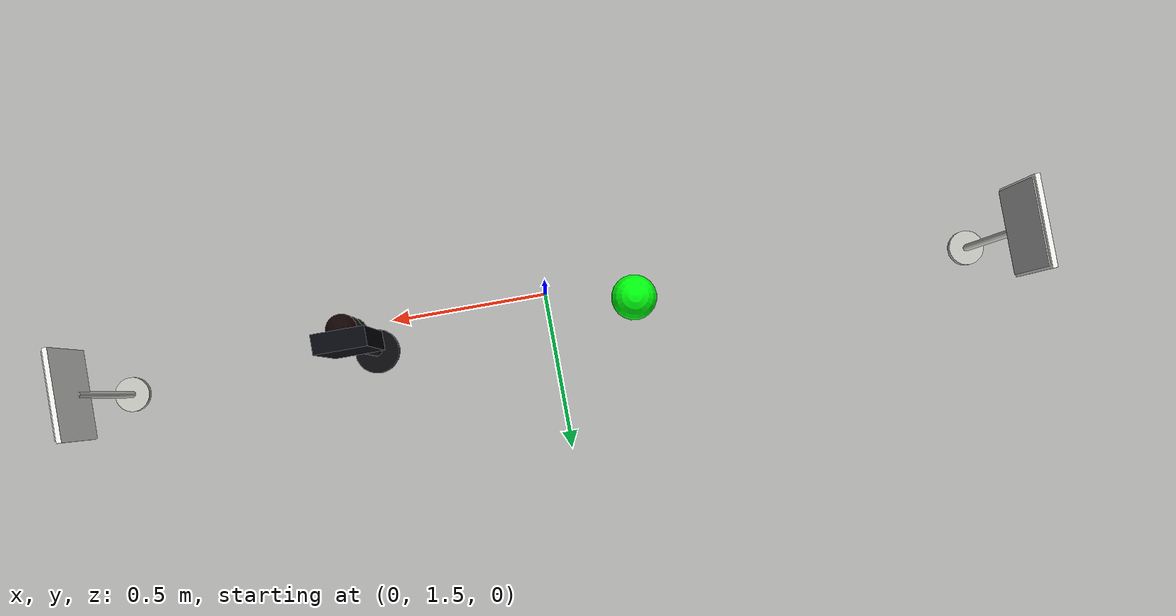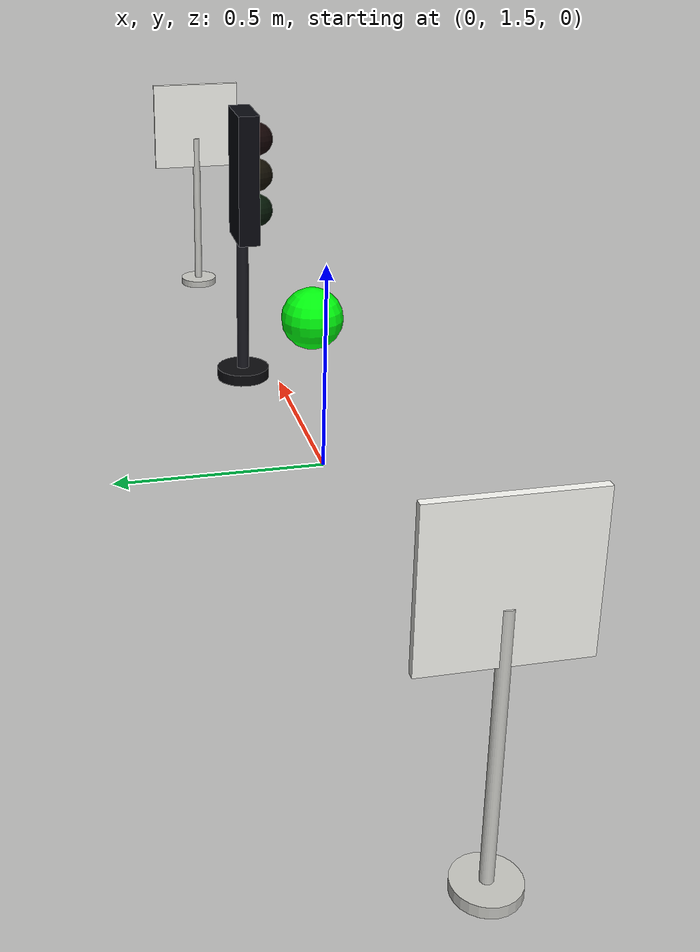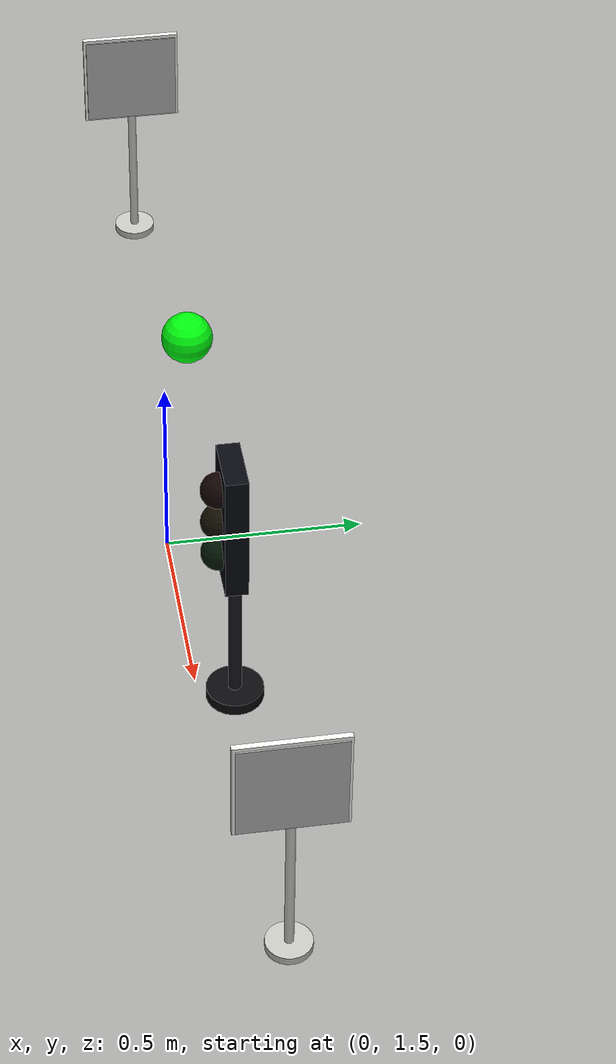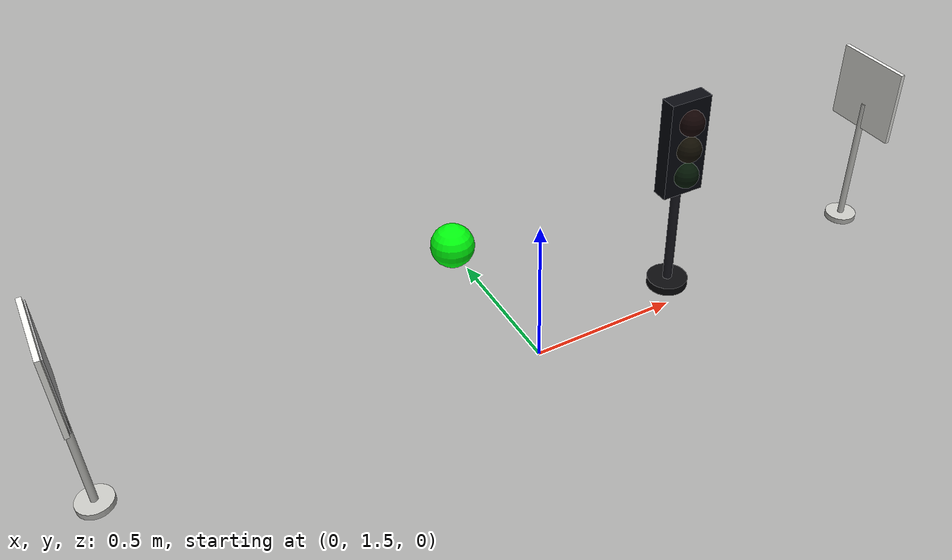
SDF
<sdf version="1.7">
 <world name="autonomous_map_3d_world">
  <model name="traffic_light_top_island">
   <static>1</static>
   <link name="traffic_light_link">
    <visual name="base_visual">
     <pose>0 0 0.015 0 -0 0</pose>
     <geometry><cylinder><radius>0.07</radius><length>0.03</length></cylinder></geometry>
     <material><ambient>0.03 0.03 0.04 1</ambient><diffuse>0.04 0.04 0.05 1</diffuse></material>
    </visual>
    <visual name="pole_visual">
     <pose>0 0 0.25 0 -0 0</pose>
     <geometry><cylinder><radius>0.016</radius><length>0.47</length></cylinder></geometry>
     <material><ambient>0.08 0.08 0.1 1</ambient><diffuse>0.1 0.1 0.13 1</diffuse></material>
    </visual>
    <visual name="housing_visual">
     <pose>0 -0.006 0.565 0 -0 0</pose>
     <geometry><box><size>0.145 0.055 0.34</size></box></geometry>
     <material><ambient>0.02 0.025 0.04 1</ambient><diffuse>0.03 0.035 0.06 1</diffuse></material>
    </visual>
    <visual name="red_lens_visual">
     <pose>0 -0.038 0.66 0 -0 0</pose>
     <geometry><sphere><radius>0.043</radius></sphere></geometry>
     <material>
      <ambient>0.035 0.002 0.002 1</ambient>
      <diffuse>0.06 0.004 0.004 1</diffuse>
      <emissive>0 0 0 1</emissive>
     </material>
    </visual>
    <visual name="yellow_lens_visual">
     <pose>0 -0.038 0.565 0 -0 0</pose>
     <geometry><sphere><radius>0.043</radius></sphere></geometry>
     <material>
      <ambient>0.035 0.025 0.002 1</ambient>
      <diffuse>0.06 0.045 0.004 1</diffuse>
      <emissive>0 0 0 1</emissive>
     </material>
    </visual>
    <visual name="green_lens_visual">
     <pose>0 -0.038 0.47 0 -0 0</pose>
     <geometry><sphere><radius>0.043</radius></sphere></geometry>
     <material>
      <ambient>0.002 0.04 0.004 1</ambient>
      <diffuse>0.004 0.078 0.01 1</diffuse>
      <emissive>0 0 0 1</emissive>
     </material>
    </visual>
   </link>
   <pose>0.562500 1.589100 0.000000 0.000000 -0.000000 -0.000003</pose>
  </model>
  <model name="traffic_light_top_island_green_active_lamp">
   <static>0</static>
   <link name="lamp_link">
    <gravity>0</gravity>
    <visual name="lamp_visual">
     <geometry><sphere><radius>0.065</radius></sphere></geometry>
     <material>
      <ambient>0 1 0.05 1</ambient>
      <diffuse>0 1 0.05 1</diffuse>
      <emissive>0 0.0313726 0.3 1</emissive>
     </material>
    </visual>
    <kinematic>1</kinematic>
    <inertial>
     <inertia><ixx>1</ixx><ixy>0</ixy><ixz>0</ixz><iyy>1</iyy><iyz>0</iyz><izz>1</izz></inertia>
     <mass>1</mass>
    </inertial>
   </link>
   <pose>-0.241400 1.589700 0.470000 0.000000 -0.000000 3.141593</pose>
  </model>
  <model name="sign_go_straight_top_island">
   <static>1</static>
   <link name="sign_link">
    <visual name="base_visual">
     <pose>0 0 0.01 0 -0 0</pose>
     <geometry><cylinder><radius>0.055</radius><length>0.02</length></cylinder></geometry>
     <material><ambient>0.72 0.72 0.7 1</ambient><diffuse>0.78 0.78 0.76 1</diffuse></material>
    </visual>
    <visual name="pole_visual">
     <pose>0 0 0.245 0 -0 0</pose>
     <geometry><cylinder><radius>0.011</radius><length>0.47</length></cylinder></geometry>
     <material><ambient>0.72 0.72 0.7 1</ambient><diffuse>0.82 0.82 0.8 1</diffuse></material>
    </visual>
    <visual name="back_plate_visual">
     <pose>0 0 0.52 0 -0 0</pose>
     <geometry><box><size>0.26 0.014 0.26</size></box></geometry>
     <material><ambient>0.96 0.96 0.94 1</ambient><diffuse>0.98 0.98 0.96 1</diffuse></material>
    </visual>
    <visual name="sign_face_visual">
     <pose>0 -0.011 0.52 0 -0 0</pose>
     <geometry><box><size>0.246 0.004 0.246</size></box></geometry>
     <material>
      <script>
       <uri>model://road_sign_go_straight/materials/scripts</uri>
       <uri>model://road_sign_go_straight/materials/textures</uri>
       <name>RoadSign/GoStraight</name>
      </script>
     </material>
    </visual>
   </link>
   <pose>1.359400 1.589100 0.000000 0.000000 -0.000000 1.570793</pose>
  </model>
  <model name="sign_turn_right_top_right_island">
   <static>1</static>
   <link name="sign_link">
    <visual name="base_visual">
     <pose>0 0 0.01 0 -0 0</pose>
     <geometry><cylinder><radius>0.055</radius><length>0.02</length></cylinder></geometry>
     <material><ambient>0.72 0.72 0.7 1</ambient><diffuse>0.78 0.78 0.76 1</diffuse></material>
    </visual>
    <visual name="pole_visual">
     <pose>0 0 0.245 0 -0 0</pose>
     <geometry><cylinder><radius>0.011</radius><length>0.47</length></cylinder></geometry>
     <material><ambient>0.72 0.72 0.7 1</ambient><diffuse>0.82 0.82 0.8 1</diffuse></material>
    </visual>
    <visual name="back_plate_visual">
     <pose>0 0 0.52 0 -0 0</pose>
     <geometry><box><size>0.26 0.014 0.26</size></box></geometry>
     <material><ambient>0.96 0.96 0.94 1</ambient><diffuse>0.98 0.98 0.96 1</diffuse></material>
    </visual>
    <visual name="sign_face_visual">
     <pose>0 -0.011 0.52 0 -0 0</pose>
     <geometry><box><size>0.246 0.004 0.246</size></box></geometry>
     <material>
      <script>
       <uri>model://road_sign_turn_right/materials/scripts</uri>
       <uri>model://road_sign_turn_right/materials/textures</uri>
       <name>RoadSign/TurnRight</name>
      </script>
     </material>
    </visual>
   </link>
   <pose>-1.359400 1.589100 0.000000 0.000000 -0.000000 1.570793</pose>
  </model>
 </world>
</sdf>
